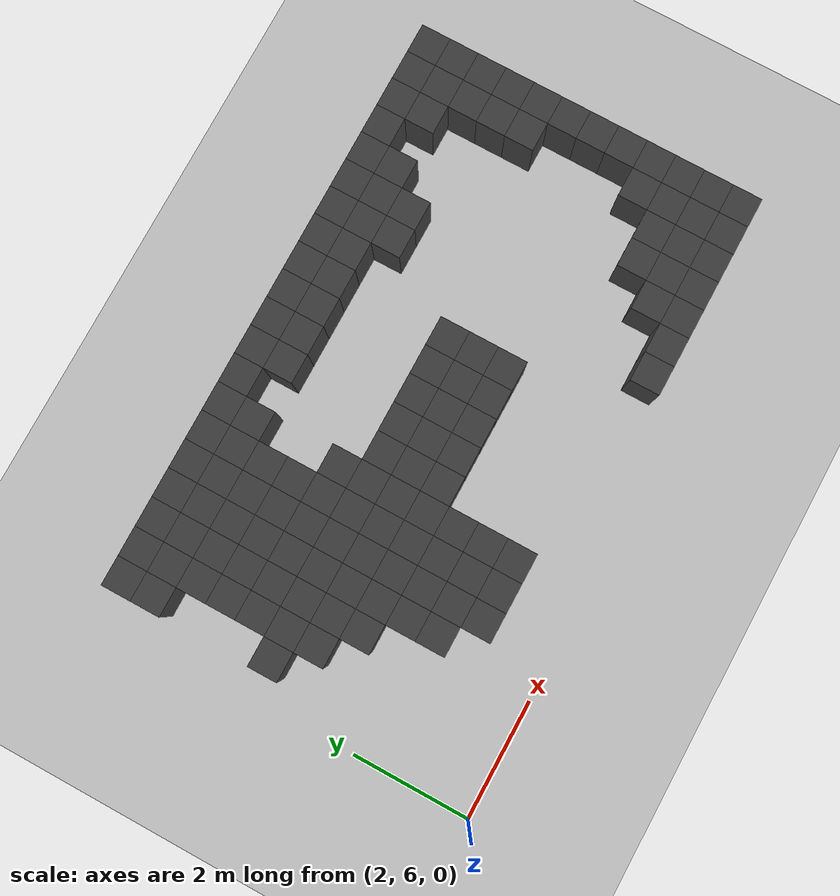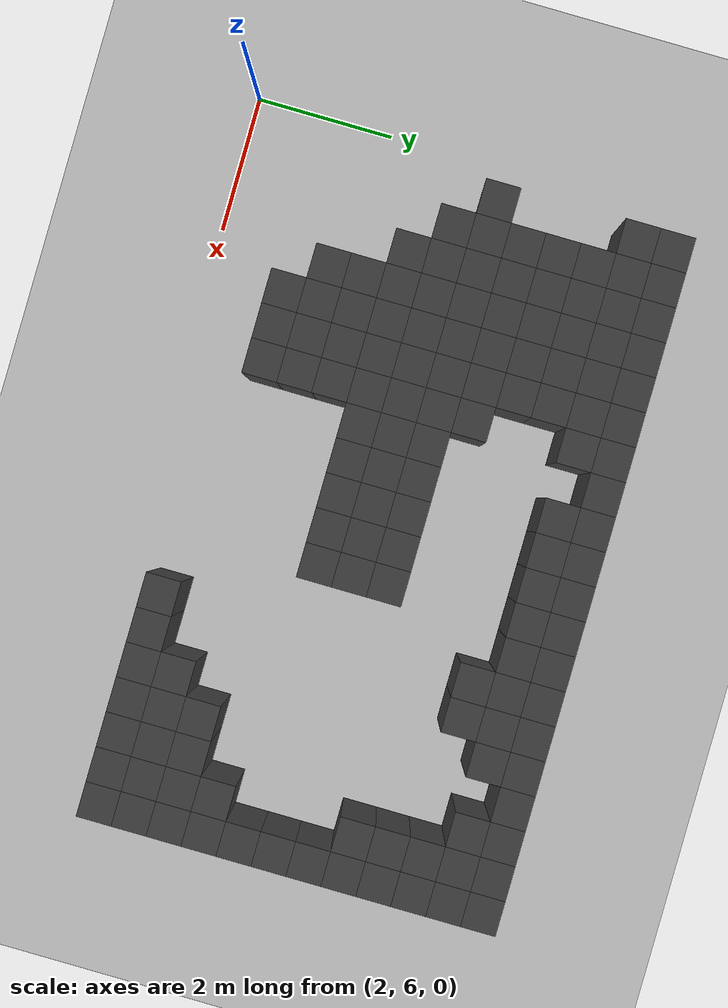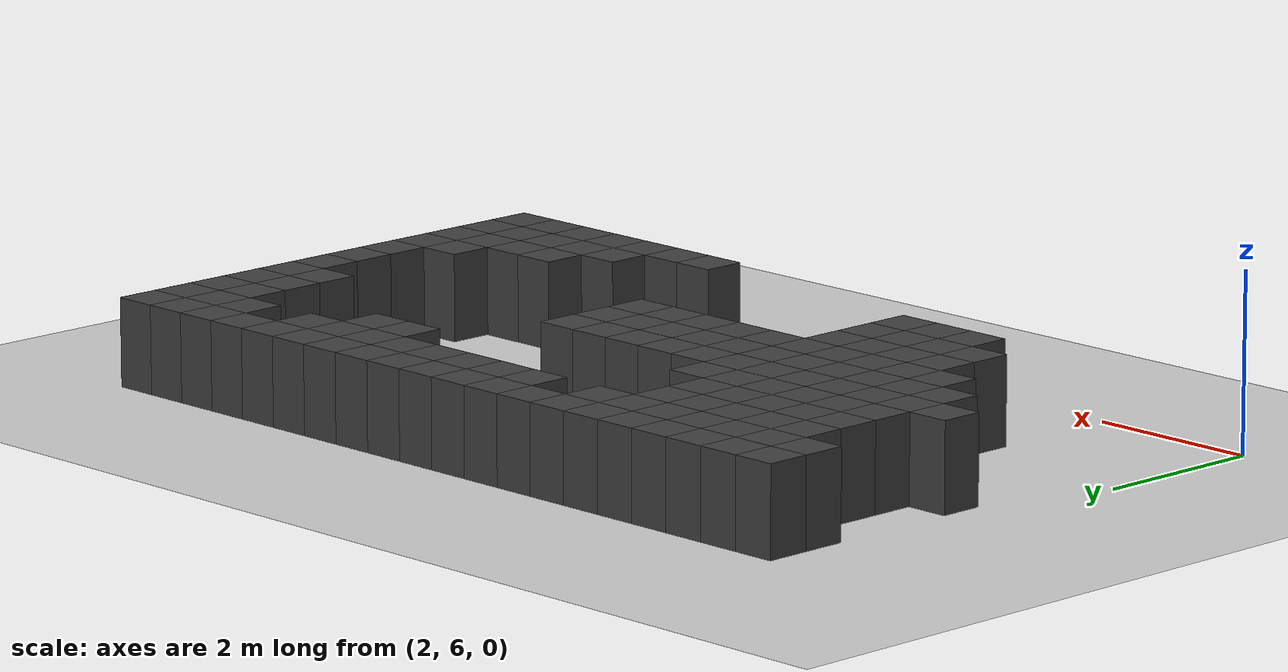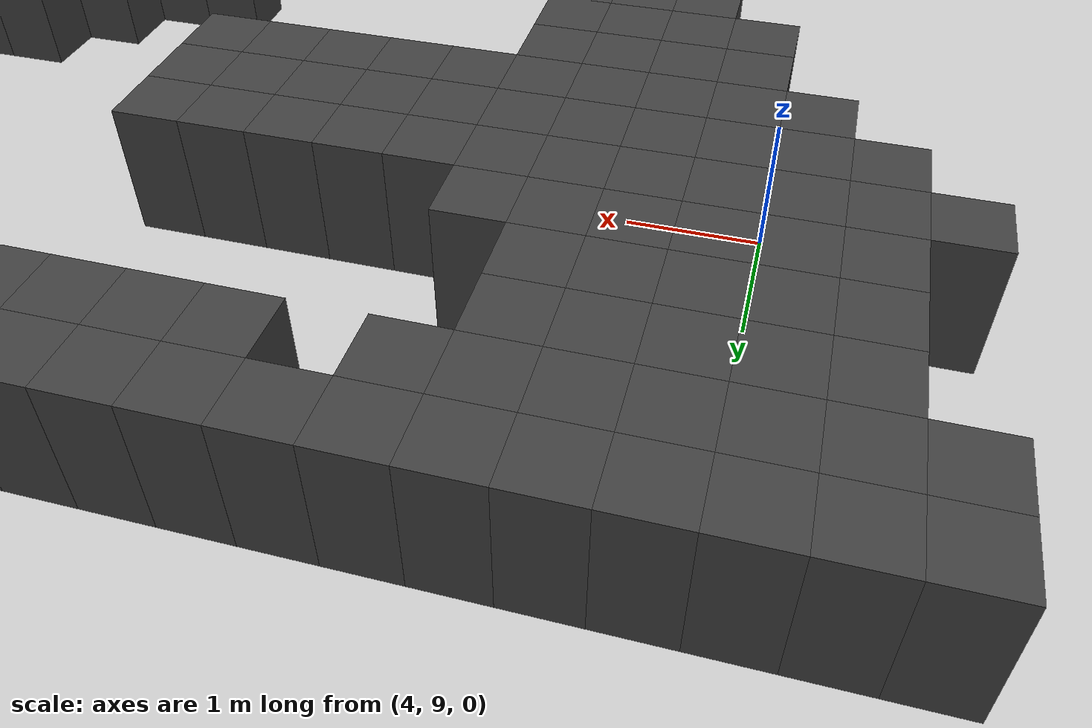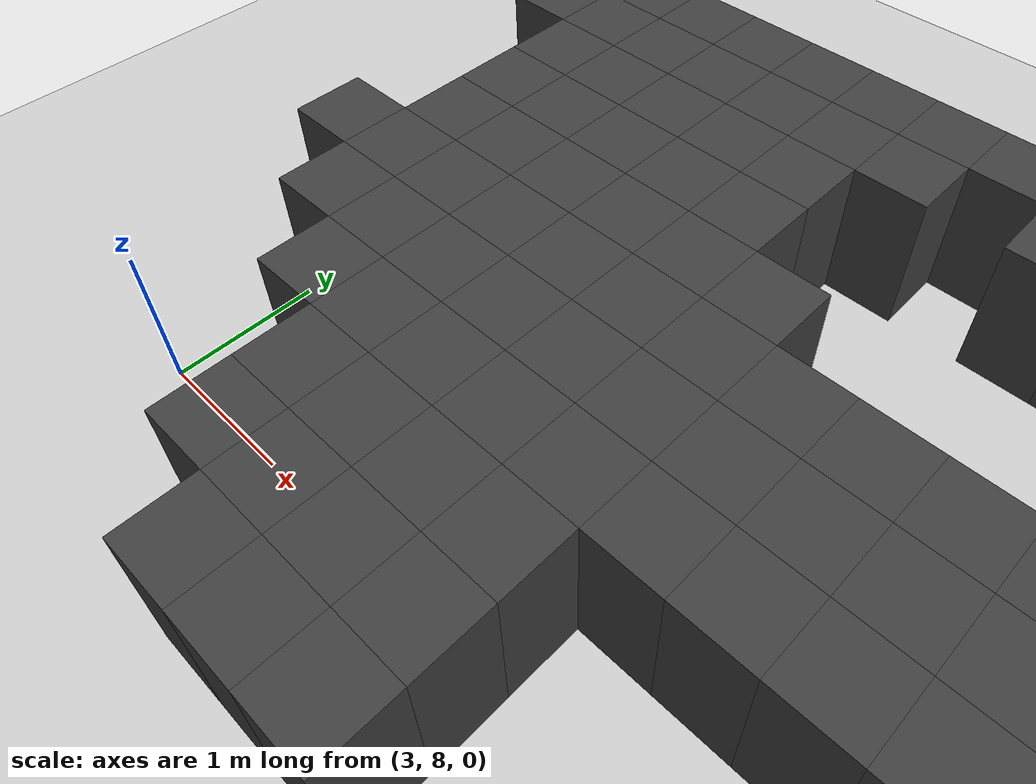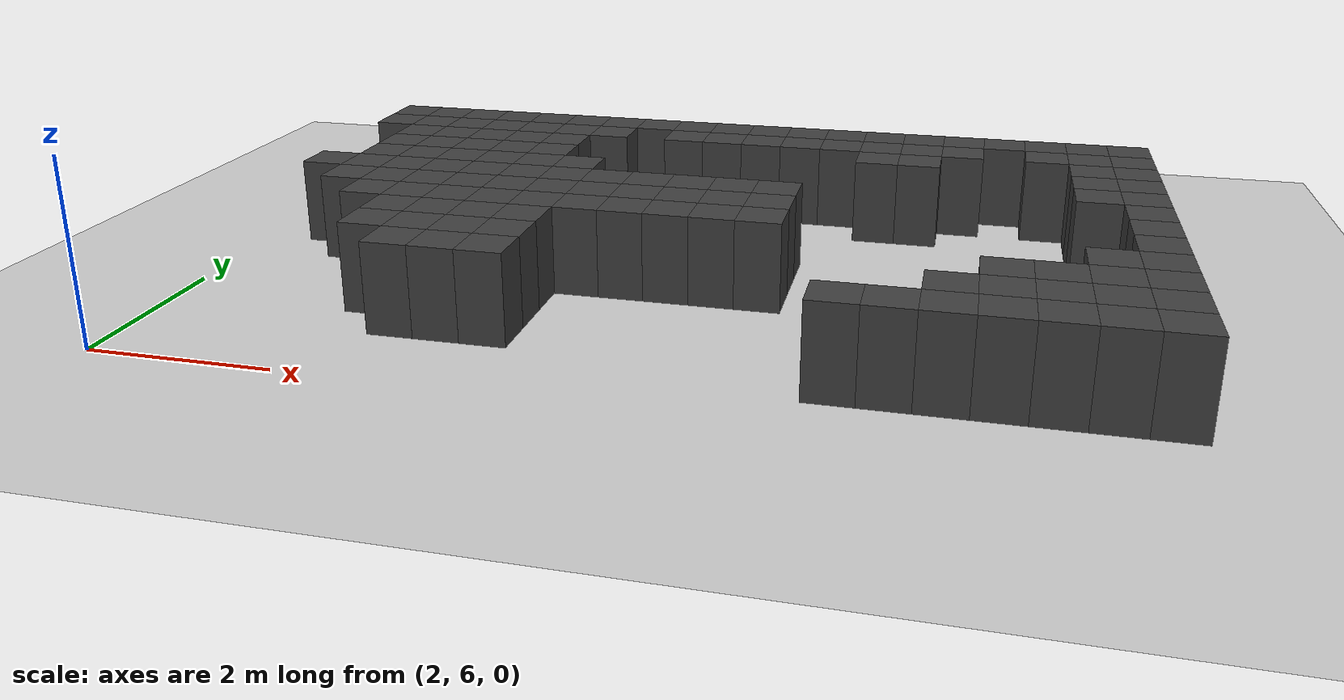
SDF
<sdf version="1.7">
 <world name="map_8843">
  <model name="ground_plane">
   <static>true</static>
   <link name="link">
    <collision name="collision">
     <geometry><plane><normal>0 0 1</normal><size>200 200</size></plane></geometry>
    </collision>
    <visual name="visual">
     <geometry><plane><normal>0 0 1</normal><size>200 200</size></plane></geometry>
     <material><ambient>0.8 0.8 0.8 1</ambient><diffuse>0.8 0.8 0.8 1</diffuse></material>
    </visual>
   </link>
  </model>
  <model name="maze_environment">
   <static>true</static>
   <link name="wall_30">
    <pose>2.750 12.250 0.500 0 0 0</pose>
    <collision name="col"><geometry><box><size>0.5 0.5 1.0</size></box></geometry></collision>
    <visual name="vis">
     <geometry><box><size>0.5 0.5 1.0</size></box></geometry>
     <material><ambient>0.15 0.15 0.15 1</ambient><diffuse>0.25 0.25 0.25 1</diffuse></material>
    </visual>
   </link>
   <link name="wall_31">
    <pose>3.250 12.250 0.500 0 0 0</pose>
    <collision name="col"><geometry><box><size>0.5 0.5 1.0</size></box></geometry></collision>
    <visual name="vis">
     <geometry><box><size>0.5 0.5 1.0</size></box></geometry>
     <material><ambient>0.15 0.15 0.15 1</ambient><diffuse>0.25 0.25 0.25 1</diffuse></material>
    </visual>
   </link>
   <link name="wall_32">
    <pose>3.750 12.250 0.500 0 0 0</pose>
    <collision name="col"><geometry><box><size>0.5 0.5 1.0</size></box></geometry></collision>
    <visual name="vis">
     <geometry><box><size>0.5 0.5 1.0</size></box></geometry>
     <material><ambient>0.15 0.15 0.15 1</ambient><diffuse>0.25 0.25 0.25 1</diffuse></material>
    </visual>
   </link>
   <link name="wall_33">
    <pose>4.250 12.250 0.500 0 0 0</pose>
    <collision name="col"><geometry><box><size>0.5 0.5 1.0</size></box></geometry></collision>
    <visual name="vis">
     <geometry><box><size>0.5 0.5 1.0</size></box></geometry>
     <material><ambient>0.15 0.15 0.15 1</ambient><diffuse>0.25 0.25 0.25 1</diffuse></material>
    </visual>
   </link>
   <link name="wall_34">
    <pose>4.750 12.250 0.500 0 0 0</pose>
    <collision name="col"><geometry><box><size>0.5 0.5 1.0</size></box></geometry></collision>
    <visual name="vis">
     <geometry><box><size>0.5 0.5 1.0</size></box></geometry>
     <material><ambient>0.15 0.15 0.15 1</ambient><diffuse>0.25 0.25 0.25 1</diffuse></material>
    </visual>
   </link>
   <link name="wall_35">
    <pose>5.250 12.250 0.500 0 0 0</pose>
    <collision name="col"><geometry><box><size>0.5 0.5 1.0</size></box></geometry></collision>
    <visual name="vis">
     <geometry><box><size>0.5 0.5 1.0</size></box></geometry>
     <material><ambient>0.15 0.15 0.15 1</ambient><diffuse>0.25 0.25 0.25 1</diffuse></material>
    </visual>
   </link>
   <link name="wall_36">
    <pose>5.750 12.250 0.500 0 0 0</pose>
    <collision name="col"><geometry><box><size>0.5 0.5 1.0</size></box></geometry></collision>
    <visual name="vis">
     <geometry><box><size>0.5 0.5 1.0</size></box></geometry>
     <material><ambient>0.15 0.15 0.15 1</ambient><diffuse>0.25 0.25 0.25 1</diffuse></material>
    </visual>
   </link>
   <link name="wall_37">
    <pose>6.250 12.250 0.500 0 0 0</pose>
    <collision name="col"><geometry><box><size>0.5 0.5 1.0</size></box></geometry></collision>
    <visual name="vis">
     <geometry><box><size>0.5 0.5 1.0</size></box></geometry>
     <material><ambient>0.15 0.15 0.15 1</ambient><diffuse>0.25 0.25 0.25 1</diffuse></material>
    </visual>
   </link>
   <link name="wall_38">
    <pose>6.750 12.250 0.500 0 0 0</pose>
    <collision name="col"><geometry><box><size>0.5 0.5 1.0</size></box></geometry></collision>
    <visual name="vis">
     <geometry><box><size>0.5 0.5 1.0</size></box></geometry>
     <material><ambient>0.15 0.15 0.15 1</ambient><diffuse>0.25 0.25 0.25 1</diffuse></material>
    </visual>
   </link>
   <link name="wall_39">
    <pose>7.250 12.250 0.500 0 0 0</pose>
    <collision name="col"><geometry><box><size>0.5 0.5 1.0</size></box></geometry></collision>
    <visual name="vis">
     <geometry><box><size>0.5 0.5 1.0</size></box></geometry>
     <material><ambient>0.15 0.15 0.15 1</ambient><diffuse>0.25 0.25 0.25 1</diffuse></material>
    </visual>
   </link>
   <link name="wall_40">
    <pose>7.750 12.250 0.500 0 0 0</pose>
    <collision name="col"><geometry><box><size>0.5 0.5 1.0</size></box></geometry></collision>
    <visual name="vis">
     <geometry><box><size>0.5 0.5 1.0</size></box></geometry>
     <material><ambient>0.15 0.15 0.15 1</ambient><diffuse>0.25 0.25 0.25 1</diffuse></material>
    </visual>
   </link>
   <link name="wall_41">
    <pose>8.250 12.250 0.500 0 0 0</pose>
    <collision name="col"><geometry><box><size>0.5 0.5 1.0</size></box></geometry></collision>
    <visual name="vis">
     <geometry><box><size>0.5 0.5 1.0</size></box></geometry>
     <material><ambient>0.15 0.15 0.15 1</ambient><diffuse>0.25 0.25 0.25 1</diffuse></material>
    </visual>
   </link>
   <link name="wall_42">
    <pose>8.750 12.250 0.500 0 0 0</pose>
    <collision name="col"><geometry><box><size>0.5 0.5 1.0</size></box></geometry></collision>
    <visual name="vis">
     <geometry><box><size>0.5 0.5 1.0</size></box></geometry>
     <material><ambient>0.15 0.15 0.15 1</ambient><diffuse>0.25 0.25 0.25 1</diffuse></material>
    </visual>
   </link>
   <link name="wall_43">
    <pose>9.250 12.250 0.500 0 0 0</pose>
    <collision name="col"><geometry><box><size>0.5 0.5 1.0</size></box></geometry></collision>
    <visual name="vis">
     <geometry><box><size>0.5 0.5 1.0</size></box></geometry>
     <material><ambient>0.15 0.15 0.15 1</ambient><diffuse>0.25 0.25 0.25 1</diffuse></material>
    </visual>
   </link>
   <link name="wall_44">
    <pose>9.750 12.250 0.500 0 0 0</pose>
    <collision name="col"><geometry><box><size>0.5 0.5 1.0</size></box></geometry></collision>
    <visual name="vis">
     <geometry><box><size>0.5 0.5 1.0</size></box></geometry>
     <material><ambient>0.15 0.15 0.15 1</ambient><diffuse>0.25 0.25 0.25 1</diffuse></material>
    </visual>
   </link>
   <link name="wall_45">
    <pose>10.250 12.250 0.500 0 0 0</pose>
    <collision name="col"><geometry><box><size>0.5 0.5 1.0</size></box></geometry></collision>
    <visual name="vis">
     <geometry><box><size>0.5 0.5 1.0</size></box></geometry>
     <material><ambient>0.15 0.15 0.15 1</ambient><diffuse>0.25 0.25 0.25 1</diffuse></material>
    </visual>
   </link>
   <link name="wall_46">
    <pose>10.750 12.250 0.500 0 0 0</pose>
    <collision name="col"><geometry><box><size>0.5 0.5 1.0</size></box></geometry></collision>
    <visual name="vis">
     <geometry><box><size>0.5 0.5 1.0</size></box></geometry>
     <material><ambient>0.15 0.15 0.15 1</ambient><diffuse>0.25 0.25 0.25 1</diffuse></material>
    </visual>
   </link>
   <link name="wall_47">
    <pose>11.250 12.250 0.500 0 0 0</pose>
    <collision name="col"><geometry><box><size>0.5 0.5 1.0</size></box></geometry></collision>
    <visual name="vis">
     <geometry><box><size>0.5 0.5 1.0</size></box></geometry>
     <material><ambient>0.15 0.15 0.15 1</ambient><diffuse>0.25 0.25 0.25 1</diffuse></material>
    </visual>
   </link>
   <link name="wall_48">
    <pose>11.750 12.250 0.500 0 0 0</pose>
    <collision name="col"><geometry><box><size>0.5 0.5 1.0</size></box></geometry></collision>
    <visual name="vis">
     <geometry><box><size>0.5 0.5 1.0</size></box></geometry>
     <material><ambient>0.15 0.15 0.15 1</ambient><diffuse>0.25 0.25 0.25 1</diffuse></material>
    </visual>
   </link>
   <link name="wall_49">
    <pose>12.250 12.250 0.500 0 0 0</pose>
    <collision name="col"><geometry><box><size>0.5 0.5 1.0</size></box></geometry></collision>
    <visual name="vis">
     <geometry><box><size>0.5 0.5 1.0</size></box></geometry>
     <material><ambient>0.15 0.15 0.15 1</ambient><diffuse>0.25 0.25 0.25 1</diffuse></material>
    </visual>
   </link>
   <link name="wall_68">
    <pose>2.750 11.750 0.500 0 0 0</pose>
    <collision name="col"><geometry><box><size>0.5 0.5 1.0</size></box></geometry></collision>
    <visual name="vis">
     <geometry><box><size>0.5 0.5 1.0</size></box></geometry>
     <material><ambient>0.15 0.15 0.15 1</ambient><diffuse>0.25 0.25 0.25 1</diffuse></material>
    </visual>
   </link>
   <link name="wall_69">
    <pose>3.250 11.750 0.500 0 0 0</pose>
    <collision name="col"><geometry><box><size>0.5 0.5 1.0</size></box></geometry></collision>
    <visual name="vis">
     <geometry><box><size>0.5 0.5 1.0</size></box></geometry>
     <material><ambient>0.15 0.15 0.15 1</ambient><diffuse>0.25 0.25 0.25 1</diffuse></material>
    </visual>
   </link>
   <link name="wall_70">
    <pose>3.750 11.750 0.500 0 0 0</pose>
    <collision name="col"><geometry><box><size>0.5 0.5 1.0</size></box></geometry></collision>
    <visual name="vis">
     <geometry><box><size>0.5 0.5 1.0</size></box></geometry>
     <material><ambient>0.15 0.15 0.15 1</ambient><diffuse>0.25 0.25 0.25 1</diffuse></material>
    </visual>
   </link>
   <link name="wall_71">
    <pose>4.250 11.750 0.500 0 0 0</pose>
    <collision name="col"><geometry><box><size>0.5 0.5 1.0</size></box></geometry></collision>
    <visual name="vis">
     <geometry><box><size>0.5 0.5 1.0</size></box></geometry>
     <material><ambient>0.15 0.15 0.15 1</ambient><diffuse>0.25 0.25 0.25 1</diffuse></material>
    </visual>
   </link>
   <link name="wall_72">
    <pose>4.750 11.750 0.500 0 0 0</pose>
    <collision name="col"><geometry><box><size>0.5 0.5 1.0</size></box></geometry></collision>
    <visual name="vis">
     <geometry><box><size>0.5 0.5 1.0</size></box></geometry>
     <material><ambient>0.15 0.15 0.15 1</ambient><diffuse>0.25 0.25 0.25 1</diffuse></material>
    </visual>
   </link>
   <link name="wall_73">
    <pose>5.250 11.750 0.500 0 0 0</pose>
    <collision name="col"><geometry><box><size>0.5 0.5 1.0</size></box></geometry></collision>
    <visual name="vis">
     <geometry><box><size>0.5 0.5 1.0</size></box></geometry>
     <material><ambient>0.15 0.15 0.15 1</ambient><diffuse>0.25 0.25 0.25 1</diffuse></material>
    </visual>
   </link>
   <link name="wall_74">
    <pose>5.750 11.750 0.500 0 0 0</pose>
    <collision name="col"><geometry><box><size>0.5 0.5 1.0</size></box></geometry></collision>
    <visual name="vis">
     <geometry><box><size>0.5 0.5 1.0</size></box></geometry>
     <material><ambient>0.15 0.15 0.15 1</ambient><diffuse>0.25 0.25 0.25 1</diffuse></material>
    </visual>
   </link>
   <link name="wall_75">
    <pose>6.750 11.750 0.500 0 0 0</pose>
    <collision name="col"><geometry><box><size>0.5 0.5 1.0</size></box></geometry></collision>
    <visual name="vis">
     <geometry><box><size>0.5 0.5 1.0</size></box></geometry>
     <material><ambient>0.15 0.15 0.15 1</ambient><diffuse>0.25 0.25 0.25 1</diffuse></material>
    </visual>
   </link>
   <link name="wall_76">
    <pose>7.250 11.750 0.500 0 0 0</pose>
    <collision name="col"><geometry><box><size>0.5 0.5 1.0</size></box></geometry></collision>
    <visual name="vis">
     <geometry><box><size>0.5 0.5 1.0</size></box></geometry>
     <material><ambient>0.15 0.15 0.15 1</ambient><diffuse>0.25 0.25 0.25 1</diffuse></material>
    </visual>
   </link>
   <link name="wall_77">
    <pose>7.750 11.750 0.500 0 0 0</pose>
    <collision name="col"><geometry><box><size>0.5 0.5 1.0</size></box></geometry></collision>
    <visual name="vis">
     <geometry><box><size>0.5 0.5 1.0</size></box></geometry>
     <material><ambient>0.15 0.15 0.15 1</ambient><diffuse>0.25 0.25 0.25 1</diffuse></material>
    </visual>
   </link>
   <link name="wall_78">
    <pose>8.250 11.750 0.500 0 0 0</pose>
    <collision name="col"><geometry><box><size>0.5 0.5 1.0</size></box></geometry></collision>
    <visual name="vis">
     <geometry><box><size>0.5 0.5 1.0</size></box></geometry>
     <material><ambient>0.15 0.15 0.15 1</ambient><diffuse>0.25 0.25 0.25 1</diffuse></material>
    </visual>
   </link>
   <link name="wall_79">
    <pose>8.750 11.750 0.500 0 0 0</pose>
    <collision name="col"><geometry><box><size>0.5 0.5 1.0</size></box></geometry></collision>
    <visual name="vis">
     <geometry><box><size>0.5 0.5 1.0</size></box></geometry>
     <material><ambient>0.15 0.15 0.15 1</ambient><diffuse>0.25 0.25 0.25 1</diffuse></material>
    </visual>
   </link>
   <link name="wall_80">
    <pose>9.250 11.750 0.500 0 0 0</pose>
    <collision name="col"><geometry><box><size>0.5 0.5 1.0</size></box></geometry></collision>
    <visual name="vis">
     <geometry><box><size>0.5 0.5 1.0</size></box></geometry>
     <material><ambient>0.15 0.15 0.15 1</ambient><diffuse>0.25 0.25 0.25 1</diffuse></material>
    </visual>
   </link>
   <link name="wall_81">
    <pose>9.750 11.750 0.500 0 0 0</pose>
    <collision name="col"><geometry><box><size>0.5 0.5 1.0</size></box></geometry></collision>
    <visual name="vis">
     <geometry><box><size>0.5 0.5 1.0</size></box></geometry>
     <material><ambient>0.15 0.15 0.15 1</ambient><diffuse>0.25 0.25 0.25 1</diffuse></material>
    </visual>
   </link>
   <link name="wall_82">
    <pose>10.250 11.750 0.500 0 0 0</pose>
    <collision name="col"><geometry><box><size>0.5 0.5 1.0</size></box></geometry></collision>
    <visual name="vis">
     <geometry><box><size>0.5 0.5 1.0</size></box></geometry>
     <material><ambient>0.15 0.15 0.15 1</ambient><diffuse>0.25 0.25 0.25 1</diffuse></material>
    </visual>
   </link>
   <link name="wall_83">
    <pose>11.250 11.750 0.500 0 0 0</pose>
    <collision name="col"><geometry><box><size>0.5 0.5 1.0</size></box></geometry></collision>
    <visual name="vis">
     <geometry><box><size>0.5 0.5 1.0</size></box></geometry>
     <material><ambient>0.15 0.15 0.15 1</ambient><diffuse>0.25 0.25 0.25 1</diffuse></material>
    </visual>
   </link>
   <link name="wall_84">
    <pose>11.750 11.750 0.500 0 0 0</pose>
    <collision name="col"><geometry><box><size>0.5 0.5 1.0</size></box></geometry></collision>
    <visual name="vis">
     <geometry><box><size>0.5 0.5 1.0</size></box></geometry>
     <material><ambient>0.15 0.15 0.15 1</ambient><diffuse>0.25 0.25 0.25 1</diffuse></material>
    </visual>
   </link>
   <link name="wall_85">
    <pose>12.250 11.750 0.500 0 0 0</pose>
    <collision name="col"><geometry><box><size>0.5 0.5 1.0</size></box></geometry></collision>
    <visual name="vis">
     <geometry><box><size>0.5 0.5 1.0</size></box></geometry>
     <material><ambient>0.15 0.15 0.15 1</ambient><diffuse>0.25 0.25 0.25 1</diffuse></material>
    </visual>
   </link>
   <link name="wall_97">
    <pose>3.250 11.250 0.500 0 0 0</pose>
    <collision name="col"><geometry><box><size>0.5 0.5 1.0</size></box></geometry></collision>
    <visual name="vis">
     <geometry><box><size>0.5 0.5 1.0</size></box></geometry>
     <material><ambient>0.15 0.15 0.15 1</ambient><diffuse>0.25 0.25 0.25 1</diffuse></material>
    </visual>
   </link>
   <link name="wall_98">
    <pose>3.750 11.250 0.500 0 0 0</pose>
    <collision name="col"><geometry><box><size>0.5 0.5 1.0</size></box></geometry></collision>
    <visual name="vis">
     <geometry><box><size>0.5 0.5 1.0</size></box></geometry>
     <material><ambient>0.15 0.15 0.15 1</ambient><diffuse>0.25 0.25 0.25 1</diffuse></material>
    </visual>
   </link>
   <link name="wall_99">
    <pose>4.250 11.250 0.500 0 0 0</pose>
    <collision name="col"><geometry><box><size>0.5 0.5 1.0</size></box></geometry></collision>
    <visual name="vis">
     <geometry><box><size>0.5 0.5 1.0</size></box></geometry>
     <material><ambient>0.15 0.15 0.15 1</ambient><diffuse>0.25 0.25 0.25 1</diffuse></material>
    </visual>
   </link>
   <link name="wall_100">
    <pose>4.750 11.250 0.500 0 0 0</pose>
    <collision name="col"><geometry><box><size>0.5 0.5 1.0</size></box></geometry></collision>
    <visual name="vis">
     <geometry><box><size>0.5 0.5 1.0</size></box></geometry>
     <material><ambient>0.15 0.15 0.15 1</ambient><diffuse>0.25 0.25 0.25 1</diffuse></material>
    </visual>
   </link>
   <link name="wall_101">
    <pose>5.250 11.250 0.500 0 0 0</pose>
    <collision name="col"><geometry><box><size>0.5 0.5 1.0</size></box></geometry></collision>
    <visual name="vis">
     <geometry><box><size>0.5 0.5 1.0</size></box></geometry>
     <material><ambient>0.15 0.15 0.15 1</ambient><diffuse>0.25 0.25 0.25 1</diffuse></material>
    </visual>
   </link>
   <link name="wall_102">
    <pose>9.250 11.250 0.500 0 0 0</pose>
    <collision name="col"><geometry><box><size>0.5 0.5 1.0</size></box></geometry></collision>
    <visual name="vis">
     <geometry><box><size>0.5 0.5 1.0</size></box></geometry>
     <material><ambient>0.15 0.15 0.15 1</ambient><diffuse>0.25 0.25 0.25 1</diffuse></material>
    </visual>
   </link>
   <link name="wall_103">
    <pose>9.750 11.250 0.500 0 0 0</pose>
    <collision name="col"><geometry><box><size>0.5 0.5 1.0</size></box></geometry></collision>
    <visual name="vis">
     <geometry><box><size>0.5 0.5 1.0</size></box></geometry>
     <material><ambient>0.15 0.15 0.15 1</ambient><diffuse>0.25 0.25 0.25 1</diffuse></material>
    </visual>
   </link>
   <link name="wall_104">
    <pose>11.750 11.250 0.500 0 0 0</pose>
    <collision name="col"><geometry><box><size>0.5 0.5 1.0</size></box></geometry></collision>
    <visual name="vis">
     <geometry><box><size>0.5 0.5 1.0</size></box></geometry>
     <material><ambient>0.15 0.15 0.15 1</ambient><diffuse>0.25 0.25 0.25 1</diffuse></material>
    </visual>
   </link>
   <link name="wall_105">
    <pose>12.250 11.250 0.500 0 0 0</pose>
    <collision name="col"><geometry><box><size>0.5 0.5 1.0</size></box></geometry></collision>
    <visual name="vis">
     <geometry><box><size>0.5 0.5 1.0</size></box></geometry>
     <material><ambient>0.15 0.15 0.15 1</ambient><diffuse>0.25 0.25 0.25 1</diffuse></material>
    </visual>
   </link>
   <link name="wall_116">
    <pose>3.250 10.750 0.500 0 0 0</pose>
    <collision name="col"><geometry><box><size>0.5 0.5 1.0</size></box></geometry></collision>
    <visual name="vis">
     <geometry><box><size>0.5 0.5 1.0</size></box></geometry>
     <material><ambient>0.15 0.15 0.15 1</ambient><diffuse>0.25 0.25 0.25 1</diffuse></material>
    </visual>
   </link>
   <link name="wall_117">
    <pose>3.750 10.750 0.500 0 0 0</pose>
    <collision name="col"><geometry><box><size>0.5 0.5 1.0</size></box></geometry></collision>
    <visual name="vis">
     <geometry><box><size>0.5 0.5 1.0</size></box></geometry>
     <material><ambient>0.15 0.15 0.15 1</ambient><diffuse>0.25 0.25 0.25 1</diffuse></material>
    </visual>
   </link>
   <link name="wall_118">
    <pose>4.250 10.750 0.500 0 0 0</pose>
    <collision name="col"><geometry><box><size>0.5 0.5 1.0</size></box></geometry></collision>
    <visual name="vis">
     <geometry><box><size>0.5 0.5 1.0</size></box></geometry>
     <material><ambient>0.15 0.15 0.15 1</ambient><diffuse>0.25 0.25 0.25 1</diffuse></material>
    </visual>
   </link>
   <link name="wall_119">
    <pose>4.750 10.750 0.500 0 0 0</pose>
    <collision name="col"><geometry><box><size>0.5 0.5 1.0</size></box></geometry></collision>
    <visual name="vis">
     <geometry><box><size>0.5 0.5 1.0</size></box></geometry>
     <material><ambient>0.15 0.15 0.15 1</ambient><diffuse>0.25 0.25 0.25 1</diffuse></material>
    </visual>
   </link>
   <link name="wall_120">
    <pose>5.250 10.750 0.500 0 0 0</pose>
    <collision name="col"><geometry><box><size>0.5 0.5 1.0</size></box></geometry></collision>
    <visual name="vis">
     <geometry><box><size>0.5 0.5 1.0</size></box></geometry>
     <material><ambient>0.15 0.15 0.15 1</ambient><diffuse>0.25 0.25 0.25 1</diffuse></material>
    </visual>
   </link>
   <link name="wall_121">
    <pose>11.750 10.750 0.500 0 0 0</pose>
    <collision name="col"><geometry><box><size>0.5 0.5 1.0</size></box></geometry></collision>
    <visual name="vis">
     <geometry><box><size>0.5 0.5 1.0</size></box></geometry>
     <material><ambient>0.15 0.15 0.15 1</ambient><diffuse>0.25 0.25 0.25 1</diffuse></material>
    </visual>
   </link>
   <link name="wall_122">
    <pose>12.250 10.750 0.500 0 0 0</pose>
    <collision name="col"><geometry><box><size>0.5 0.5 1.0</size></box></geometry></collision>
    <visual name="vis">
     <geometry><box><size>0.5 0.5 1.0</size></box></geometry>
     <material><ambient>0.15 0.15 0.15 1</ambient><diffuse>0.25 0.25 0.25 1</diffuse></material>
    </visual>
   </link>
   <link name="wall_134">
    <pose>3.250 10.250 0.500 0 0 0</pose>
    <collision name="col"><geometry><box><size>0.5 0.5 1.0</size></box></geometry></collision>
    <visual name="vis">
     <geometry><box><size>0.5 0.5 1.0</size></box></geometry>
     <material><ambient>0.15 0.15 0.15 1</ambient><diffuse>0.25 0.25 0.25 1</diffuse></material>
    </visual>
   </link>
   <link name="wall_135">
    <pose>3.750 10.250 0.500 0 0 0</pose>
    <collision name="col"><geometry><box><size>0.5 0.5 1.0</size></box></geometry></collision>
    <visual name="vis">
     <geometry><box><size>0.5 0.5 1.0</size></box></geometry>
     <material><ambient>0.15 0.15 0.15 1</ambient><diffuse>0.25 0.25 0.25 1</diffuse></material>
    </visual>
   </link>
   <link name="wall_136">
    <pose>4.250 10.250 0.500 0 0 0</pose>
    <collision name="col"><geometry><box><size>0.5 0.5 1.0</size></box></geometry></collision>
    <visual name="vis">
     <geometry><box><size>0.5 0.5 1.0</size></box></geometry>
     <material><ambient>0.15 0.15 0.15 1</ambient><diffuse>0.25 0.25 0.25 1</diffuse></material>
    </visual>
   </link>
   <link name="wall_137">
    <pose>4.750 10.250 0.500 0 0 0</pose>
    <collision name="col"><geometry><box><size>0.5 0.5 1.0</size></box></geometry></collision>
    <visual name="vis">
     <geometry><box><size>0.5 0.5 1.0</size></box></geometry>
     <material><ambient>0.15 0.15 0.15 1</ambient><diffuse>0.25 0.25 0.25 1</diffuse></material>
    </visual>
   </link>
   <link name="wall_138">
    <pose>5.250 10.250 0.500 0 0 0</pose>
    <collision name="col"><geometry><box><size>0.5 0.5 1.0</size></box></geometry></collision>
    <visual name="vis">
     <geometry><box><size>0.5 0.5 1.0</size></box></geometry>
     <material><ambient>0.15 0.15 0.15 1</ambient><diffuse>0.25 0.25 0.25 1</diffuse></material>
    </visual>
   </link>
   <link name="wall_139">
    <pose>5.750 10.250 0.500 0 0 0</pose>
    <collision name="col"><geometry><box><size>0.5 0.5 1.0</size></box></geometry></collision>
    <visual name="vis">
     <geometry><box><size>0.5 0.5 1.0</size></box></geometry>
     <material><ambient>0.15 0.15 0.15 1</ambient><diffuse>0.25 0.25 0.25 1</diffuse></material>
    </visual>
   </link>
   <link name="wall_140">
    <pose>11.750 10.250 0.500 0 0 0</pose>
    <collision name="col"><geometry><box><size>0.5 0.5 1.0</size></box></geometry></collision>
    <visual name="vis">
     <geometry><box><size>0.5 0.5 1.0</size></box></geometry>
     <material><ambient>0.15 0.15 0.15 1</ambient><diffuse>0.25 0.25 0.25 1</diffuse></material>
    </visual>
   </link>
   <link name="wall_141">
    <pose>12.250 10.250 0.500 0 0 0</pose>
    <collision name="col"><geometry><box><size>0.5 0.5 1.0</size></box></geometry></collision>
    <visual name="vis">
     <geometry><box><size>0.5 0.5 1.0</size></box></geometry>
     <material><ambient>0.15 0.15 0.15 1</ambient><diffuse>0.25 0.25 0.25 1</diffuse></material>
    </visual>
   </link>
   <link name="wall_154">
    <pose>2.750 9.750 0.500 0 0 0</pose>
    <collision name="col"><geometry><box><size>0.5 0.5 1.0</size></box></geometry></collision>
    <visual name="vis">
     <geometry><box><size>0.5 0.5 1.0</size></box></geometry>
     <material><ambient>0.15 0.15 0.15 1</ambient><diffuse>0.25 0.25 0.25 1</diffuse></material>
    </visual>
   </link>
   <link name="wall_155">
    <pose>3.250 9.750 0.500 0 0 0</pose>
    <collision name="col"><geometry><box><size>0.5 0.5 1.0</size></box></geometry></collision>
    <visual name="vis">
     <geometry><box><size>0.5 0.5 1.0</size></box></geometry>
     <material><ambient>0.15 0.15 0.15 1</ambient><diffuse>0.25 0.25 0.25 1</diffuse></material>
    </visual>
   </link>
   <link name="wall_156">
    <pose>3.750 9.750 0.500 0 0 0</pose>
    <collision name="col"><geometry><box><size>0.5 0.5 1.0</size></box></geometry></collision>
    <visual name="vis">
     <geometry><box><size>0.5 0.5 1.0</size></box></geometry>
     <material><ambient>0.15 0.15 0.15 1</ambient><diffuse>0.25 0.25 0.25 1</diffuse></material>
    </visual>
   </link>
   <link name="wall_157">
    <pose>4.250 9.750 0.500 0 0 0</pose>
    <collision name="col"><geometry><box><size>0.5 0.5 1.0</size></box></geometry></collision>
    <visual name="vis">
     <geometry><box><size>0.5 0.5 1.0</size></box></geometry>
     <material><ambient>0.15 0.15 0.15 1</ambient><diffuse>0.25 0.25 0.25 1</diffuse></material>
    </visual>
   </link>
   <link name="wall_158">
    <pose>4.750 9.750 0.500 0 0 0</pose>
    <collision name="col"><geometry><box><size>0.5 0.5 1.0</size></box></geometry></collision>
    <visual name="vis">
     <geometry><box><size>0.5 0.5 1.0</size></box></geometry>
     <material><ambient>0.15 0.15 0.15 1</ambient><diffuse>0.25 0.25 0.25 1</diffuse></material>
    </visual>
   </link>
   <link name="wall_159">
    <pose>5.250 9.750 0.500 0 0 0</pose>
    <collision name="col"><geometry><box><size>0.5 0.5 1.0</size></box></geometry></collision>
    <visual name="vis">
     <geometry><box><size>0.5 0.5 1.0</size></box></geometry>
     <material><ambient>0.15 0.15 0.15 1</ambient><diffuse>0.25 0.25 0.25 1</diffuse></material>
    </visual>
   </link>
   <link name="wall_160">
    <pose>5.750 9.750 0.500 0 0 0</pose>
    <collision name="col"><geometry><box><size>0.5 0.5 1.0</size></box></geometry></collision>
    <visual name="vis">
     <geometry><box><size>0.5 0.5 1.0</size></box></geometry>
     <material><ambient>0.15 0.15 0.15 1</ambient><diffuse>0.25 0.25 0.25 1</diffuse></material>
    </visual>
   </link>
   <link name="wall_161">
    <pose>6.250 9.750 0.500 0 0 0</pose>
    <collision name="col"><geometry><box><size>0.5 0.5 1.0</size></box></geometry></collision>
    <visual name="vis">
     <geometry><box><size>0.5 0.5 1.0</size></box></geometry>
     <material><ambient>0.15 0.15 0.15 1</ambient><diffuse>0.25 0.25 0.25 1</diffuse></material>
    </visual>
   </link>
   <link name="wall_162">
    <pose>6.750 9.750 0.500 0 0 0</pose>
    <collision name="col"><geometry><box><size>0.5 0.5 1.0</size></box></geometry></collision>
    <visual name="vis">
     <geometry><box><size>0.5 0.5 1.0</size></box></geometry>
     <material><ambient>0.15 0.15 0.15 1</ambient><diffuse>0.25 0.25 0.25 1</diffuse></material>
    </visual>
   </link>
   <link name="wall_163">
    <pose>7.250 9.750 0.500 0 0 0</pose>
    <collision name="col"><geometry><box><size>0.5 0.5 1.0</size></box></geometry></collision>
    <visual name="vis">
     <geometry><box><size>0.5 0.5 1.0</size></box></geometry>
     <material><ambient>0.15 0.15 0.15 1</ambient><diffuse>0.25 0.25 0.25 1</diffuse></material>
    </visual>
   </link>
   <link name="wall_164">
    <pose>7.750 9.750 0.500 0 0 0</pose>
    <collision name="col"><geometry><box><size>0.5 0.5 1.0</size></box></geometry></collision>
    <visual name="vis">
     <geometry><box><size>0.5 0.5 1.0</size></box></geometry>
     <material><ambient>0.15 0.15 0.15 1</ambient><diffuse>0.25 0.25 0.25 1</diffuse></material>
    </visual>
   </link>
   <link name="wall_165">
    <pose>8.250 9.750 0.500 0 0 0</pose>
    <collision name="col"><geometry><box><size>0.5 0.5 1.0</size></box></geometry></collision>
    <visual name="vis">
     <geometry><box><size>0.5 0.5 1.0</size></box></geometry>
     <material><ambient>0.15 0.15 0.15 1</ambient><diffuse>0.25 0.25 0.25 1</diffuse></material>
    </visual>
   </link>
   <link name="wall_166">
    <pose>12.250 9.750 0.500 0 0 0</pose>
    <collision name="col"><geometry><box><size>0.5 0.5 1.0</size></box></geometry></collision>
    <visual name="vis">
     <geometry><box><size>0.5 0.5 1.0</size></box></geometry>
     <material><ambient>0.15 0.15 0.15 1</ambient><diffuse>0.25 0.25 0.25 1</diffuse></material>
    </visual>
   </link>
   <link name="wall_176">
    <pose>3.250 9.250 0.500 0 0 0</pose>
    <collision name="col"><geometry><box><size>0.5 0.5 1.0</size></box></geometry></collision>
    <visual name="vis">
     <geometry><box><size>0.5 0.5 1.0</size></box></geometry>
     <material><ambient>0.15 0.15 0.15 1</ambient><diffuse>0.25 0.25 0.25 1</diffuse></material>
    </visual>
   </link>
   <link name="wall_177">
    <pose>3.750 9.250 0.500 0 0 0</pose>
    <collision name="col"><geometry><box><size>0.5 0.5 1.0</size></box></geometry></collision>
    <visual name="vis">
     <geometry><box><size>0.5 0.5 1.0</size></box></geometry>
     <material><ambient>0.15 0.15 0.15 1</ambient><diffuse>0.25 0.25 0.25 1</diffuse></material>
    </visual>
   </link>
   <link name="wall_178">
    <pose>4.250 9.250 0.500 0 0 0</pose>
    <collision name="col"><geometry><box><size>0.5 0.5 1.0</size></box></geometry></collision>
    <visual name="vis">
     <geometry><box><size>0.5 0.5 1.0</size></box></geometry>
     <material><ambient>0.15 0.15 0.15 1</ambient><diffuse>0.25 0.25 0.25 1</diffuse></material>
    </visual>
   </link>
   <link name="wall_179">
    <pose>4.750 9.250 0.500 0 0 0</pose>
    <collision name="col"><geometry><box><size>0.5 0.5 1.0</size></box></geometry></collision>
    <visual name="vis">
     <geometry><box><size>0.5 0.5 1.0</size></box></geometry>
     <material><ambient>0.15 0.15 0.15 1</ambient><diffuse>0.25 0.25 0.25 1</diffuse></material>
    </visual>
   </link>
   <link name="wall_180">
    <pose>5.250 9.250 0.500 0 0 0</pose>
    <collision name="col"><geometry><box><size>0.5 0.5 1.0</size></box></geometry></collision>
    <visual name="vis">
     <geometry><box><size>0.5 0.5 1.0</size></box></geometry>
     <material><ambient>0.15 0.15 0.15 1</ambient><diffuse>0.25 0.25 0.25 1</diffuse></material>
    </visual>
   </link>
   <link name="wall_181">
    <pose>5.750 9.250 0.500 0 0 0</pose>
    <collision name="col"><geometry><box><size>0.5 0.5 1.0</size></box></geometry></collision>
    <visual name="vis">
     <geometry><box><size>0.5 0.5 1.0</size></box></geometry>
     <material><ambient>0.15 0.15 0.15 1</ambient><diffuse>0.25 0.25 0.25 1</diffuse></material>
    </visual>
   </link>
   <link name="wall_182">
    <pose>6.250 9.250 0.500 0 0 0</pose>
    <collision name="col"><geometry><box><size>0.5 0.5 1.0</size></box></geometry></collision>
    <visual name="vis">
     <geometry><box><size>0.5 0.5 1.0</size></box></geometry>
     <material><ambient>0.15 0.15 0.15 1</ambient><diffuse>0.25 0.25 0.25 1</diffuse></material>
    </visual>
   </link>
   <link name="wall_183">
    <pose>6.750 9.250 0.500 0 0 0</pose>
    <collision name="col"><geometry><box><size>0.5 0.5 1.0</size></box></geometry></collision>
    <visual name="vis">
     <geometry><box><size>0.5 0.5 1.0</size></box></geometry>
     <material><ambient>0.15 0.15 0.15 1</ambient><diffuse>0.25 0.25 0.25 1</diffuse></material>
    </visual>
   </link>
   <link name="wall_184">
    <pose>7.250 9.250 0.500 0 0 0</pose>
    <collision name="col"><geometry><box><size>0.5 0.5 1.0</size></box></geometry></collision>
    <visual name="vis">
     <geometry><box><size>0.5 0.5 1.0</size></box></geometry>
     <material><ambient>0.15 0.15 0.15 1</ambient><diffuse>0.25 0.25 0.25 1</diffuse></material>
    </visual>
   </link>
   <link name="wall_185">
    <pose>7.750 9.250 0.500 0 0 0</pose>
    <collision name="col"><geometry><box><size>0.5 0.5 1.0</size></box></geometry></collision>
    <visual name="vis">
     <geometry><box><size>0.5 0.5 1.0</size></box></geometry>
     <material><ambient>0.15 0.15 0.15 1</ambient><diffuse>0.25 0.25 0.25 1</diffuse></material>
    </visual>
   </link>
   <link name="wall_186">
    <pose>8.250 9.250 0.500 0 0 0</pose>
    <collision name="col"><geometry><box><size>0.5 0.5 1.0</size></box></geometry></collision>
    <visual name="vis">
     <geometry><box><size>0.5 0.5 1.0</size></box></geometry>
     <material><ambient>0.15 0.15 0.15 1</ambient><diffuse>0.25 0.25 0.25 1</diffuse></material>
    </visual>
   </link>
   <link name="wall_187">
    <pose>12.250 9.250 0.500 0 0 0</pose>
    <collision name="col"><geometry><box><size>0.5 0.5 1.0</size></box></geometry></collision>
    <visual name="vis">
     <geometry><box><size>0.5 0.5 1.0</size></box></geometry>
     <material><ambient>0.15 0.15 0.15 1</ambient><diffuse>0.25 0.25 0.25 1</diffuse></material>
    </visual>
   </link>
   <link name="wall_198">
    <pose>3.750 8.750 0.500 0 0 0</pose>
    <collision name="col"><geometry><box><size>0.5 0.5 1.0</size></box></geometry></collision>
    <visual name="vis">
     <geometry><box><size>0.5 0.5 1.0</size></box></geometry>
     <material><ambient>0.15 0.15 0.15 1</ambient><diffuse>0.25 0.25 0.25 1</diffuse></material>
    </visual>
   </link>
   <link name="wall_199">
    <pose>4.250 8.750 0.500 0 0 0</pose>
    <collision name="col"><geometry><box><size>0.5 0.5 1.0</size></box></geometry></collision>
    <visual name="vis">
     <geometry><box><size>0.5 0.5 1.0</size></box></geometry>
     <material><ambient>0.15 0.15 0.15 1</ambient><diffuse>0.25 0.25 0.25 1</diffuse></material>
    </visual>
   </link>
   <link name="wall_200">
    <pose>4.750 8.750 0.500 0 0 0</pose>
    <collision name="col"><geometry><box><size>0.5 0.5 1.0</size></box></geometry></collision>
    <visual name="vis">
     <geometry><box><size>0.5 0.5 1.0</size></box></geometry>
     <material><ambient>0.15 0.15 0.15 1</ambient><diffuse>0.25 0.25 0.25 1</diffuse></material>
    </visual>
   </link>
   <link name="wall_201">
    <pose>5.250 8.750 0.500 0 0 0</pose>
    <collision name="col"><geometry><box><size>0.5 0.5 1.0</size></box></geometry></collision>
    <visual name="vis">
     <geometry><box><size>0.5 0.5 1.0</size></box></geometry>
     <material><ambient>0.15 0.15 0.15 1</ambient><diffuse>0.25 0.25 0.25 1</diffuse></material>
    </visual>
   </link>
   <link name="wall_202">
    <pose>5.750 8.750 0.500 0 0 0</pose>
    <collision name="col"><geometry><box><size>0.5 0.5 1.0</size></box></geometry></collision>
    <visual name="vis">
     <geometry><box><size>0.5 0.5 1.0</size></box></geometry>
     <material><ambient>0.15 0.15 0.15 1</ambient><diffuse>0.25 0.25 0.25 1</diffuse></material>
    </visual>
   </link>
   <link name="wall_203">
    <pose>6.250 8.750 0.500 0 0 0</pose>
    <collision name="col"><geometry><box><size>0.5 0.5 1.0</size></box></geometry></collision>
    <visual name="vis">
     <geometry><box><size>0.5 0.5 1.0</size></box></geometry>
     <material><ambient>0.15 0.15 0.15 1</ambient><diffuse>0.25 0.25 0.25 1</diffuse></material>
    </visual>
   </link>
   <link name="wall_204">
    <pose>6.750 8.750 0.500 0 0 0</pose>
    <collision name="col"><geometry><box><size>0.5 0.5 1.0</size></box></geometry></collision>
    <visual name="vis">
     <geometry><box><size>0.5 0.5 1.0</size></box></geometry>
     <material><ambient>0.15 0.15 0.15 1</ambient><diffuse>0.25 0.25 0.25 1</diffuse></material>
    </visual>
   </link>
   <link name="wall_205">
    <pose>7.250 8.750 0.500 0 0 0</pose>
    <collision name="col"><geometry><box><size>0.5 0.5 1.0</size></box></geometry></collision>
    <visual name="vis">
     <geometry><box><size>0.5 0.5 1.0</size></box></geometry>
     <material><ambient>0.15 0.15 0.15 1</ambient><diffuse>0.25 0.25 0.25 1</diffuse></material>
    </visual>
   </link>
   <link name="wall_206">
    <pose>7.750 8.750 0.500 0 0 0</pose>
    <collision name="col"><geometry><box><size>0.5 0.5 1.0</size></box></geometry></collision>
    <visual name="vis">
     <geometry><box><size>0.5 0.5 1.0</size></box></geometry>
     <material><ambient>0.15 0.15 0.15 1</ambient><diffuse>0.25 0.25 0.25 1</diffuse></material>
    </visual>
   </link>
   <link name="wall_207">
    <pose>8.250 8.750 0.500 0 0 0</pose>
    <collision name="col"><geometry><box><size>0.5 0.5 1.0</size></box></geometry></collision>
    <visual name="vis">
     <geometry><box><size>0.5 0.5 1.0</size></box></geometry>
     <material><ambient>0.15 0.15 0.15 1</ambient><diffuse>0.25 0.25 0.25 1</diffuse></material>
    </visual>
   </link>
   <link name="wall_208">
    <pose>12.250 8.750 0.500 0 0 0</pose>
    <collision name="col"><geometry><box><size>0.5 0.5 1.0</size></box></geometry></collision>
    <visual name="vis">
     <geometry><box><size>0.5 0.5 1.0</size></box></geometry>
     <material><ambient>0.15 0.15 0.15 1</ambient><diffuse>0.25 0.25 0.25 1</diffuse></material>
    </visual>
   </link>
   <link name="wall_219">
    <pose>4.250 8.250 0.500 0 0 0</pose>
    <collision name="col"><geometry><box><size>0.5 0.5 1.0</size></box></geometry></collision>
    <visual name="vis">
     <geometry><box><size>0.5 0.5 1.0</size></box></geometry>
     <material><ambient>0.15 0.15 0.15 1</ambient><diffuse>0.25 0.25 0.25 1</diffuse></material>
    </visual>
   </link>
   <link name="wall_220">
    <pose>4.750 8.250 0.500 0 0 0</pose>
    <collision name="col"><geometry><box><size>0.5 0.5 1.0</size></box></geometry></collision>
    <visual name="vis">
     <geometry><box><size>0.5 0.5 1.0</size></box></geometry>
     <material><ambient>0.15 0.15 0.15 1</ambient><diffuse>0.25 0.25 0.25 1</diffuse></material>
    </visual>
   </link>
   <link name="wall_221">
    <pose>5.250 8.250 0.500 0 0 0</pose>
    <collision name="col"><geometry><box><size>0.5 0.5 1.0</size></box></geometry></collision>
    <visual name="vis">
     <geometry><box><size>0.5 0.5 1.0</size></box></geometry>
     <material><ambient>0.15 0.15 0.15 1</ambient><diffuse>0.25 0.25 0.25 1</diffuse></material>
    </visual>
   </link>
   <link name="wall_222">
    <pose>5.750 8.250 0.500 0 0 0</pose>
    <collision name="col"><geometry><box><size>0.5 0.5 1.0</size></box></geometry></collision>
    <visual name="vis">
     <geometry><box><size>0.5 0.5 1.0</size></box></geometry>
     <material><ambient>0.15 0.15 0.15 1</ambient><diffuse>0.25 0.25 0.25 1</diffuse></material>
    </visual>
   </link>
   <link name="wall_223">
    <pose>11.750 8.250 0.500 0 0 0</pose>
    <collision name="col"><geometry><box><size>0.5 0.5 1.0</size></box></geometry></collision>
    <visual name="vis">
     <geometry><box><size>0.5 0.5 1.0</size></box></geometry>
     <material><ambient>0.15 0.15 0.15 1</ambient><diffuse>0.25 0.25 0.25 1</diffuse></material>
    </visual>
   </link>
   <link name="wall_224">
    <pose>12.250 8.250 0.500 0 0 0</pose>
    <collision name="col"><geometry><box><size>0.5 0.5 1.0</size></box></geometry></collision>
    <visual name="vis">
     <geometry><box><size>0.5 0.5 1.0</size></box></geometry>
     <material><ambient>0.15 0.15 0.15 1</ambient><diffuse>0.25 0.25 0.25 1</diffuse></material>
    </visual>
   </link>
   <link name="wall_235">
    <pose>4.250 7.750 0.500 0 0 0</pose>
    <collision name="col"><geometry><box><size>0.5 0.5 1.0</size></box></geometry></collision>
    <visual name="vis">
     <geometry><box><size>0.5 0.5 1.0</size></box></geometry>
     <material><ambient>0.15 0.15 0.15 1</ambient><diffuse>0.25 0.25 0.25 1</diffuse></material>
    </visual>
   </link>
   <link name="wall_236">
    <pose>4.750 7.750 0.500 0 0 0</pose>
    <collision name="col"><geometry><box><size>0.5 0.5 1.0</size></box></geometry></collision>
    <visual name="vis">
     <geometry><box><size>0.5 0.5 1.0</size></box></geometry>
     <material><ambient>0.15 0.15 0.15 1</ambient><diffuse>0.25 0.25 0.25 1</diffuse></material>
    </visual>
   </link>
   <link name="wall_237">
    <pose>5.250 7.750 0.500 0 0 0</pose>
    <collision name="col"><geometry><box><size>0.5 0.5 1.0</size></box></geometry></collision>
    <visual name="vis">
     <geometry><box><size>0.5 0.5 1.0</size></box></geometry>
     <material><ambient>0.15 0.15 0.15 1</ambient><diffuse>0.25 0.25 0.25 1</diffuse></material>
    </visual>
   </link>
   <link name="wall_238">
    <pose>5.750 7.750 0.500 0 0 0</pose>
    <collision name="col"><geometry><box><size>0.5 0.5 1.0</size></box></geometry></collision>
    <visual name="vis">
     <geometry><box><size>0.5 0.5 1.0</size></box></geometry>
     <material><ambient>0.15 0.15 0.15 1</ambient><diffuse>0.25 0.25 0.25 1</diffuse></material>
    </visual>
   </link>
   <link name="wall_239">
    <pose>10.750 7.750 0.500 0 0 0</pose>
    <collision name="col"><geometry><box><size>0.5 0.5 1.0</size></box></geometry></collision>
    <visual name="vis">
     <geometry><box><size>0.5 0.5 1.0</size></box></geometry>
     <material><ambient>0.15 0.15 0.15 1</ambient><diffuse>0.25 0.25 0.25 1</diffuse></material>
    </visual>
   </link>
   <link name="wall_240">
    <pose>11.250 7.750 0.500 0 0 0</pose>
    <collision name="col"><geometry><box><size>0.5 0.5 1.0</size></box></geometry></collision>
    <visual name="vis">
     <geometry><box><size>0.5 0.5 1.0</size></box></geometry>
     <material><ambient>0.15 0.15 0.15 1</ambient><diffuse>0.25 0.25 0.25 1</diffuse></material>
    </visual>
   </link>
   <link name="wall_241">
    <pose>11.750 7.750 0.500 0 0 0</pose>
    <collision name="col"><geometry><box><size>0.5 0.5 1.0</size></box></geometry></collision>
    <visual name="vis">
     <geometry><box><size>0.5 0.5 1.0</size></box></geometry>
     <material><ambient>0.15 0.15 0.15 1</ambient><diffuse>0.25 0.25 0.25 1</diffuse></material>
    </visual>
   </link>
   <link name="wall_242">
    <pose>12.250 7.750 0.500 0 0 0</pose>
    <collision name="col"><geometry><box><size>0.5 0.5 1.0</size></box></geometry></collision>
    <visual name="vis">
     <geometry><box><size>0.5 0.5 1.0</size></box></geometry>
     <material><ambient>0.15 0.15 0.15 1</ambient><diffuse>0.25 0.25 0.25 1</diffuse></material>
    </visual>
   </link>
   <link name="wall_251">
    <pose>4.750 7.250 0.500 0 0 0</pose>
    <collision name="col"><geometry><box><size>0.5 0.5 1.0</size></box></geometry></collision>
    <visual name="vis">
     <geometry><box><size>0.5 0.5 1.0</size></box></geometry>
     <material><ambient>0.15 0.15 0.15 1</ambient><diffuse>0.25 0.25 0.25 1</diffuse></material>
    </visual>
   </link>
   <link name="wall_252">
    <pose>5.250 7.250 0.500 0 0 0</pose>
    <collision name="col"><geometry><box><size>0.5 0.5 1.0</size></box></geometry></collision>
    <visual name="vis">
     <geometry><box><size>0.5 0.5 1.0</size></box></geometry>
     <material><ambient>0.15 0.15 0.15 1</ambient><diffuse>0.25 0.25 0.25 1</diffuse></material>
    </visual>
   </link>
   <link name="wall_253">
    <pose>5.750 7.250 0.500 0 0 0</pose>
    <collision name="col"><geometry><box><size>0.5 0.5 1.0</size></box></geometry></collision>
    <visual name="vis">
     <geometry><box><size>0.5 0.5 1.0</size></box></geometry>
     <material><ambient>0.15 0.15 0.15 1</ambient><diffuse>0.25 0.25 0.25 1</diffuse></material>
    </visual>
   </link>
   <link name="wall_254">
    <pose>10.250 7.250 0.500 0 0 0</pose>
    <collision name="col"><geometry><box><size>0.5 0.5 1.0</size></box></geometry></collision>
    <visual name="vis">
     <geometry><box><size>0.5 0.5 1.0</size></box></geometry>
     <material><ambient>0.15 0.15 0.15 1</ambient><diffuse>0.25 0.25 0.25 1</diffuse></material>
    </visual>
   </link>
   <link name="wall_255">
    <pose>10.750 7.250 0.500 0 0 0</pose>
    <collision name="col"><geometry><box><size>0.5 0.5 1.0</size></box></geometry></collision>
    <visual name="vis">
     <geometry><box><size>0.5 0.5 1.0</size></box></geometry>
     <material><ambient>0.15 0.15 0.15 1</ambient><diffuse>0.25 0.25 0.25 1</diffuse></material>
    </visual>
   </link>
   <link name="wall_256">
    <pose>11.250 7.250 0.500 0 0 0</pose>
    <collision name="col"><geometry><box><size>0.5 0.5 1.0</size></box></geometry></collision>
    <visual name="vis">
     <geometry><box><size>0.5 0.5 1.0</size></box></geometry>
     <material><ambient>0.15 0.15 0.15 1</ambient><diffuse>0.25 0.25 0.25 1</diffuse></material>
    </visual>
   </link>
   <link name="wall_257">
    <pose>11.750 7.250 0.500 0 0 0</pose>
    <collision name="col"><geometry><box><size>0.5 0.5 1.0</size></box></geometry></collision>
    <visual name="vis">
     <geometry><box><size>0.5 0.5 1.0</size></box></geometry>
     <material><ambient>0.15 0.15 0.15 1</ambient><diffuse>0.25 0.25 0.25 1</diffuse></material>
    </visual>
   </link>
   <link name="wall_258">
    <pose>12.250 7.250 0.500 0 0 0</pose>
    <collision name="col"><geometry><box><size>0.5 0.5 1.0</size></box></geometry></collision>
    <visual name="vis">
     <geometry><box><size>0.5 0.5 1.0</size></box></geometry>
     <material><ambient>0.15 0.15 0.15 1</ambient><diffuse>0.25 0.25 0.25 1</diffuse></material>
    </visual>
   </link>
   <link name="wall_270">
    <pose>9.250 6.750 0.500 0 0 0</pose>
    <collision name="col"><geometry><box><size>0.5 0.5 1.0</size></box></geometry></collision>
    <visual name="vis">
     <geometry><box><size>0.5 0.5 1.0</size></box></geometry>
     <material><ambient>0.15 0.15 0.15 1</ambient><diffuse>0.25 0.25 0.25 1</diffuse></material>
    </visual>
   </link>
   <link name="wall_271">
    <pose>9.750 6.750 0.500 0 0 0</pose>
    <collision name="col"><geometry><box><size>0.5 0.5 1.0</size></box></geometry></collision>
    <visual name="vis">
     <geometry><box><size>0.5 0.5 1.0</size></box></geometry>
     <material><ambient>0.15 0.15 0.15 1</ambient><diffuse>0.25 0.25 0.25 1</diffuse></material>
    </visual>
   </link>
   <link name="wall_272">
    <pose>10.250 6.750 0.500 0 0 0</pose>
    <collision name="col"><geometry><box><size>0.5 0.5 1.0</size></box></geometry></collision>
    <visual name="vis">
     <geometry><box><size>0.5 0.5 1.0</size></box></geometry>
     <material><ambient>0.15 0.15 0.15 1</ambient><diffuse>0.25 0.25 0.25 1</diffuse></material>
    </visual>
   </link>
   <link name="wall_273">
    <pose>10.750 6.750 0.500 0 0 0</pose>
    <collision name="col"><geometry><box><size>0.5 0.5 1.0</size></box></geometry></collision>
    <visual name="vis">
     <geometry><box><size>0.5 0.5 1.0</size></box></geometry>
     <material><ambient>0.15 0.15 0.15 1</ambient><diffuse>0.25 0.25 0.25 1</diffuse></material>
    </visual>
   </link>
   <link name="wall_274">
    <pose>11.250 6.750 0.500 0 0 0</pose>
    <collision name="col"><geometry><box><size>0.5 0.5 1.0</size></box></geometry></collision>
    <visual name="vis">
     <geometry><box><size>0.5 0.5 1.0</size></box></geometry>
     <material><ambient>0.15 0.15 0.15 1</ambient><diffuse>0.25 0.25 0.25 1</diffuse></material>
    </visual>
   </link>
   <link name="wall_275">
    <pose>11.750 6.750 0.500 0 0 0</pose>
    <collision name="col"><geometry><box><size>0.5 0.5 1.0</size></box></geometry></collision>
    <visual name="vis">
     <geometry><box><size>0.5 0.5 1.0</size></box></geometry>
     <material><ambient>0.15 0.15 0.15 1</ambient><diffuse>0.25 0.25 0.25 1</diffuse></material>
    </visual>
   </link>
   <link name="wall_276">
    <pose>12.250 6.750 0.500 0 0 0</pose>
    <collision name="col"><geometry><box><size>0.5 0.5 1.0</size></box></geometry></collision>
    <visual name="vis">
     <geometry><box><size>0.5 0.5 1.0</size></box></geometry>
     <material><ambient>0.15 0.15 0.15 1</ambient><diffuse>0.25 0.25 0.25 1</diffuse></material>
    </visual>
   </link>
  </model>
 </world>
</sdf>
